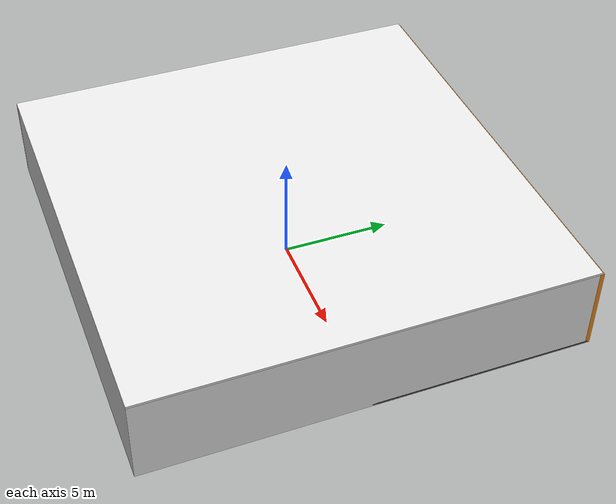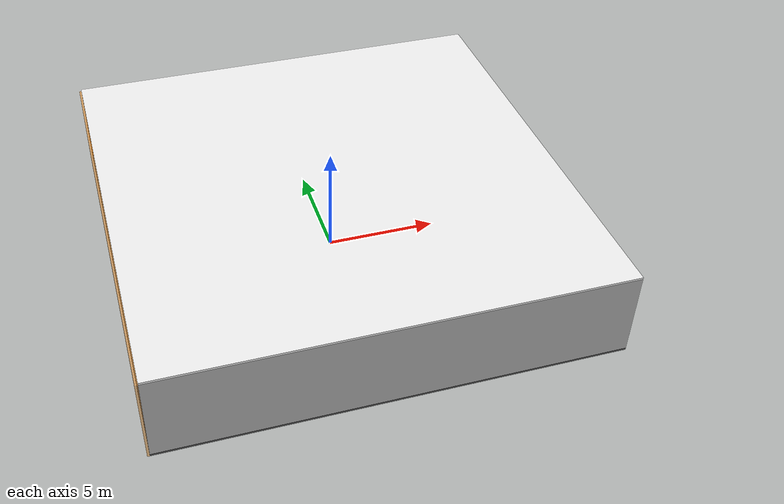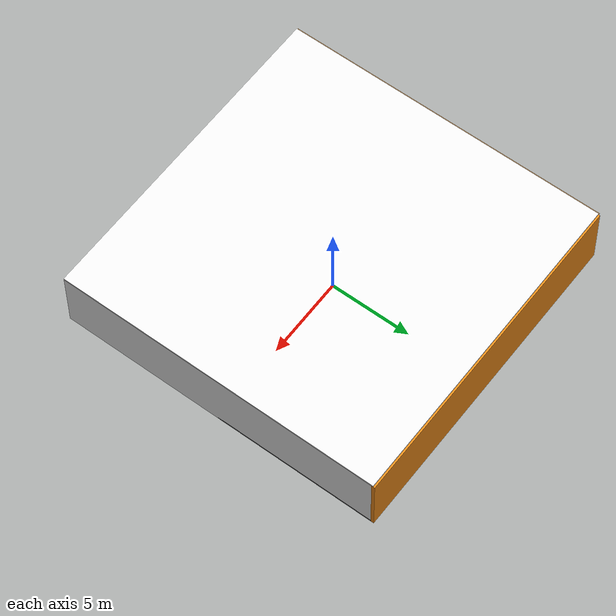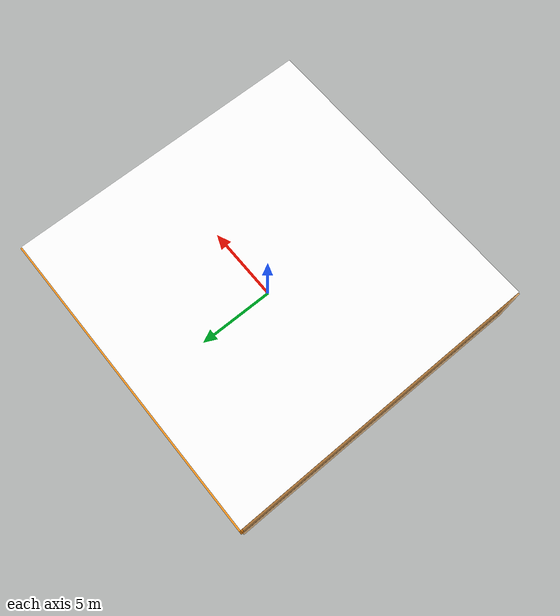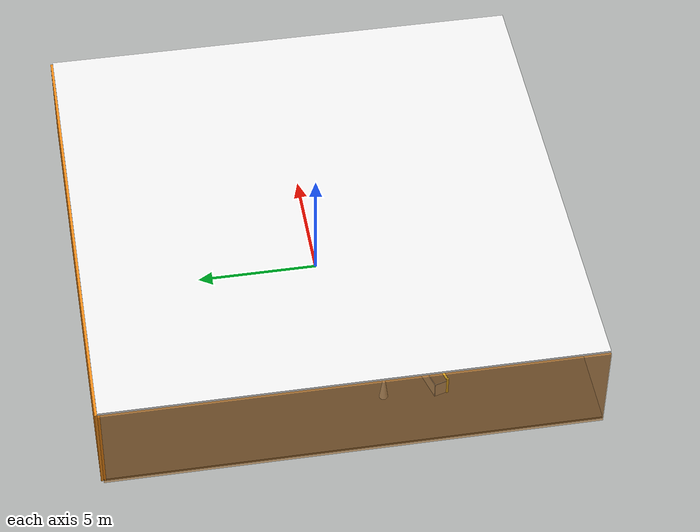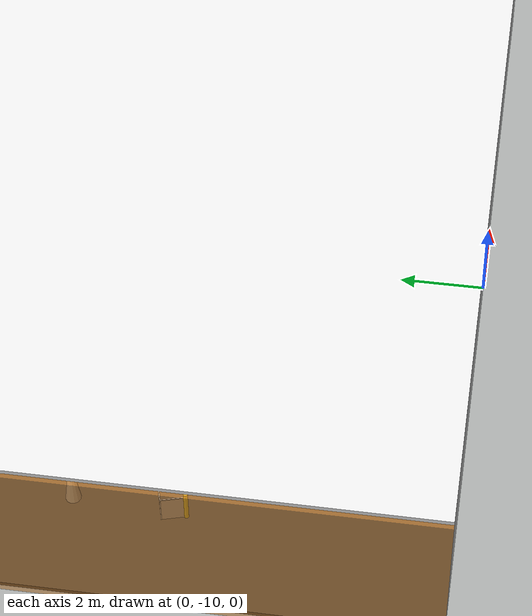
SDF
<sdf version="1.4">
 <world name="default">
  <physics type="ode">
   <max_step_size>0.001</max_step_size>
   <real_time_factor>1</real_time_factor>
   <real_time_update_rate>1000</real_time_update_rate>
   <gravity>0 0 -9.8</gravity>
  </physics>
  <scene><ambient>0.4 0.4 0.4 1</ambient><background>0.7 0.7 0.7 1</background><shadows>1</shadows></scene>
  <model name="Surrounding">
   <static>1</static>
   <link name="Ceiling">
    <collision name="Ceiling_Collision"><geometry><box><size>20 20 0.1</size></box></geometry></collision>
    <visual name="Ceiling_Visual">
     <geometry><box><size>20 20 0.1</size></box></geometry>
     <material>
      <script><uri>file://media/materials/scripts/gazebo.material</uri><name>Gazebo/WhiteGlow</name></script>
     </material>
    </visual>
    <pose>0 0 4.05 0 0 0</pose>
   </link>
   <link name="Wall_South">
    <collision name="Wall_South_Collision">
     <geometry><box><size>20 0 4</size></box></geometry>
     <pose>0 0 2 0 -0 0</pose>
    </collision>
    <visual name="Wall_South_Visual">
     <pose>0 0 2 0 -0 0</pose>
     <geometry><box><size>20 0 4</size></box></geometry>
     <material>
      <script><uri>file://media/materials/scripts/gazebo.material</uri><name>Gazebo/CloudySky</name></script>
     </material>
    </visual>
    <velocity_decay><linear>0</linear><angular>0</angular></velocity_decay>
    <pose>0 -10 0 0 -0 0</pose>
   </link>
   <link name="Wall_East">
    <collision name="Wall_21_Collision">
     <geometry><box><size>20 0 4</size></box></geometry>
     <pose>0 0 2 0 -0 0</pose>
    </collision>
    <visual name="Wall_21_Visual">
     <pose>0 0 2 0 -0 0</pose>
     <geometry><box><size>20 0 4</size></box></geometry>
     <material>
      <script><uri>file://media/materials/scripts/gazebo.material</uri><name>Gazebo/WhiteGlow</name></script>
     </material>
    </visual>
    <velocity_decay><linear>0</linear><angular>0</angular></velocity_decay>
    <pose>10 0 0 0 -0 1.5708</pose>
   </link>
   <link name="Wall_North">
    <collision name="Wall_22_Collision">
     <geometry><box><size>20 0.2 4</size></box></geometry>
     <pose>0 0 2 0 -0 0</pose>
    </collision>
    <visual name="Wall_22_Visual">
     <pose>0 0 2 0 -0 0</pose>
     <geometry><box><size>20 0.2 4</size></box></geometry>
     <material>
      <script><uri>file://media/materials/scripts/gazebo.material</uri><name>Gazebo/Orange</name></script>
     </material>
    </visual>
    <velocity_decay><linear>0</linear><angular>0</angular></velocity_decay>
    <pose>0 10 0 0 -0 0</pose>
   </link>
   <link name="Wall_West">
    <collision name="Wall_23_Collision">
     <geometry><box><size>20 0.2 4</size></box></geometry>
     <pose>0 0 2 0 -0 0</pose>
    </collision>
    <visual name="Wall_23_Visual">
     <pose>0 0 2 0 -0 0</pose>
     <geometry><box><size>20 0.2 4</size></box></geometry>
     <material>
      <script>
       <uri>file://media/materials/scripts/gazebo.material</uri>
       <name>Gazebo/OrangeTransparent</name>
      </script>
     </material>
    </visual>
    <velocity_decay><linear>0</linear><angular>0</angular></velocity_decay>
    <pose>-10 0 0 0 0 -1.5708</pose>
   </link>
   <link name="Ground_link">
    <collision name="collision">
     <pose>0 0 .05 0 -0 0</pose>
     <geometry><box><size>20 20 0.1</size></box></geometry>
    </collision>
    <visual name="visual">
     <pose>0 0 .05 0 -0 0</pose>
     <geometry><box><size>20 20 0.1</size></box></geometry>
     <material>
      <script><uri>file://media/materials/scripts/gazebo.material</uri><name>Gazebo/DarkGrey</name></script>
     </material>
    </visual>
   </link>
   <static>1</static>
  </model>
  <spherical_coordinates>
   <surface_model>EARTH_WGS84</surface_model>
   <latitude_deg>0</latitude_deg>
   <longitude_deg>0</longitude_deg>
   <elevation>0</elevation>
   <heading_deg>0</heading_deg>
  </spherical_coordinates>
  <light name="lightball_0" type="diffuse">
   <diffuse>0.8 0.8 0.8 1</diffuse>
   <specular>0.2 0.2 0.2 1</specular>
   <attenuation>
    <range>100</range>
    <constant>0.7</constant>
    <linear>0.01</linear>
    <quadratic>0.001</quadratic>
   </attenuation>
   <direction>-0.5 0.1 -0.9</direction>
   <pose>-0.780683975117 -4.02823524718 1.79402211412 0 0 0</pose>
  </light>
  <light name="lightball_1" type="diffuse">
   <diffuse>0.8 0.8 0.8 1</diffuse>
   <specular>0.2 0.2 0.2 1</specular>
   <attenuation>
    <range>100</range>
    <constant>0.7</constant>
    <linear>0.01</linear>
    <quadratic>0.001</quadratic>
   </attenuation>
   <direction>-0.5 0.1 -0.9</direction>
   <pose>-5.98337894917 4.15746241615 1.47995364445 0 0 0</pose>
  </light>
  <light name="lightball_2" type="diffuse">
   <diffuse>0.8 0.8 0.8 1</diffuse>
   <specular>0.2 0.2 0.2 1</specular>
   <attenuation>
    <range>100</range>
    <constant>0.7</constant>
    <linear>0.01</linear>
    <quadratic>0.001</quadratic>
   </attenuation>
   <direction>-0.5 0.1 -0.9</direction>
   <pose>9.70387522162 7.66770993357 2.96419819453 0 0 0</pose>
  </light>
  <light name="lightball_3" type="diffuse">
   <diffuse>0.8 0.8 0.8 1</diffuse>
   <specular>0.2 0.2 0.2 1</specular>
   <attenuation>
    <range>100</range>
    <constant>0.7</constant>
    <linear>0.01</linear>
    <quadratic>0.001</quadratic>
   </attenuation>
   <direction>-0.5 0.1 -0.9</direction>
   <pose>3.96634409331 -9.64643077256 3.38836652931 0 0 0</pose>
  </light>
  <light name="lightball_4" type="diffuse">
   <diffuse>0.8 0.8 0.8 1</diffuse>
   <specular>0.2 0.2 0.2 1</specular>
   <attenuation>
    <range>100</range>
    <constant>0.7</constant>
    <linear>0.01</linear>
    <quadratic>0.001</quadratic>
   </attenuation>
   <direction>-0.5 0.1 -0.9</direction>
   <pose>-8.35856527278 8.79914252093 2.0027788614 0 0 0</pose>
  </light>
  <light name="lightball_5" type="diffuse">
   <diffuse>0.8 0.8 0.8 1</diffuse>
   <specular>0.2 0.2 0.2 1</specular>
   <attenuation>
    <range>100</range>
    <constant>0.7</constant>
    <linear>0.01</linear>
    <quadratic>0.001</quadratic>
   </attenuation>
   <direction>-0.5 0.1 -0.9</direction>
   <pose>5.96593211715 -8.51808198455 2.6196214269 0 0 0</pose>
  </light>
  <light name="lightball_6" type="diffuse">
   <diffuse>0.8 0.8 0.8 1</diffuse>
   <specular>0.2 0.2 0.2 1</specular>
   <attenuation>
    <range>100</range>
    <constant>0.7</constant>
    <linear>0.01</linear>
    <quadratic>0.001</quadratic>
   </attenuation>
   <direction>-0.5 0.1 -0.9</direction>
   <pose>-5.69392294083 -7.44066304885 2.14502302936 0 0 0</pose>
  </light>
  <light name="lightball_7" type="diffuse">
   <diffuse>0.8 0.8 0.8 1</diffuse>
   <specular>0.2 0.2 0.2 1</specular>
   <attenuation>
    <range>100</range>
    <constant>0.7</constant>
    <linear>0.01</linear>
    <quadratic>0.001</quadratic>
   </attenuation>
   <direction>-0.5 0.1 -0.9</direction>
   <pose>-7.55659293442 5.68809986928 1.54545275732 0 0 0</pose>
  </light>
  <light name="lightball_8" type="diffuse">
   <diffuse>0.8 0.8 0.8 1</diffuse>
   <specular>0.2 0.2 0.2 1</specular>
   <attenuation>
    <range>100</range>
    <constant>0.7</constant>
    <linear>0.01</linear>
    <quadratic>0.001</quadratic>
   </attenuation>
   <direction>-0.5 0.1 -0.9</direction>
   <pose>-2.38011436956 -8.0529019128 0.622439840152 0 0 0</pose>
  </light>
  <light name="lightball_9" type="diffuse">
   <diffuse>0.8 0.8 0.8 1</diffuse>
   <specular>0.2 0.2 0.2 1</specular>
   <attenuation>
    <range>100</range>
    <constant>0.7</constant>
    <linear>0.01</linear>
    <quadratic>0.001</quadratic>
   </attenuation>
   <direction>-0.5 0.1 -0.9</direction>
   <pose>-4.16705426282 -6.18729529384 3.69848885747 0 0 0</pose>
  </light>
  <include>
   <uri>model://robocup_3Dsim_goal</uri>
   <pose>-6.73351466753 -3.82558527843 0 0 0 1.84801923093</pose>
  </include>
  <include>
   <uri>model://construction_cone</uri>
   <pose>-7.57145557283 -1.54227016892 0 0 0 1.41919659362</pose>
  </include>
  <include><uri>model://cabinet</uri><pose>-4.06042192636 -6.51646777569 0 0 0 1.83247686243</pose></include>
  <include>
   <uri>model://robocup_3Dsim_goal</uri>
   <pose>-1.4252644368 -8.21311483751 0 0 0 3.13442798157</pose>
  </include>
  <include><uri>model://table</uri><pose>1.21380045774 -6.6767056255 0 0 0 0.272657108275</pose></include>
  <include><uri>model://cabinet</uri><pose>6.41655522903 6.52778097671 0 0 0 1.44114091976</pose></include>
 </world>
</sdf>

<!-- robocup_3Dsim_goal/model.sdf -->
<sdf version="1.5">
  <model name="robocup_3d_goal">
    <static>true</static>
    <link name="left_post">
      <pose>0 1.05 0.45 0 0 0</pose>
      <collision name="collision">
        <geometry>
          <cylinder>
            <radius>0.05</radius>
            <length>0.9</length>
          </cylinder>
        </geometry>
      </collision>
      <visual name="visual">
        <geometry>
          <cylinder>
            <radius>0.05</radius>
            <length>0.9</length>
          </cylinder>
        </geometry>
        <material>
          <script>
            <uri>file://media/materials/scripts/gazebo.material</uri>
            <name>Gazebo/ZincYellow</name>
          </script>
        </material>
      </visual>
    </link>
    <link name="left_support_horiz_lower">
      <pose>0.30 1.05 0.01 0 0 0</pose>
      <collision name="collision">
        <geometry>
          <box>
            <size>0.50 0.02 0.02</size>
          </box>
        </geometry>
      </collision>
      <visual name="visual">
        <geometry>
          <box>
            <size>0.50 0.02 0.02</size>
          </box>
        </geometry>
        <material>
          <script>
            <uri>file://media/materials/scripts/gazebo.material</uri>
            <name>Gazebo/White</name>
          </script>
        </material>
      </visual>
    </link>
    <link name="left_support_horiz_upper">
      <pose>0.30 1.05 0.79 0 0 0</pose>
      <collision name="collision">
        <geometry>
          <box>
            <size>0.50 0.02 0.02</size>
          </box>
        </geometry>
      </collision>
      <visual name="visual">
        <geometry>
          <box>
            <size>0.50 0.02 0.02</size>
          </box>
        </geometry>
        <material>
          <script>
            <uri>file://media/materials/scripts/gazebo.material</uri>
            <name>Gazebo/White</name>
          </script>
        </material>
      </visual>
    </link>
    <link name="left_support_vertical">
      <pose>0.56 1.05 0.4 0 1.5708 0</pose>
      <collision name="collision">
        <geometry>
          <box>
            <size>0.80 0.02 0.02</size>
          </box>
        </geometry>
      </collision>
      <visual name="visual">
        <geometry>
          <box>
            <size>0.80 0.02 0.02</size>
          </box>
        </geometry>
        <material>
          <script>
            <uri>file://media/materials/scripts/gazebo.material</uri>
            <name>Gazebo/White</name>
          </script>
        </material>
      </visual>
    </link>
    <link name="right_support_horiz_lower">
      <pose>0.30 -1.05 0.01 0 0 0</pose>
      <collision name="collision">
        <geometry>
          <box>
            <size>0.50 0.02 0.02</size>
          </box>
        </geometry>
      </collision>
      <visual name="visual">
        <geometry>
          <box>
            <size>0.50 0.02 0.02</size>
          </box>
        </geometry>
        <material>
          <script>
            <uri>file://media/materials/scripts/gazebo.material</uri>
            <name>Gazebo/White</name>
          </script>
        </material>
      </visual>
    </link>
    <link name="right_support_horiz_upper">
      <pose>0.30 -1.05 0.79 0 0 0</pose>
      <collision name="collision">
        <geometry>
          <box>
            <size>0.50 0.02 0.02</size>
          </box>
        </geometry>
      </collision>
      <visual name="visual">
        <geometry>
          <box>
            <size>0.50 0.02 0.02</size>
          </box>
        </geometry>
        <material>
          <script>
            <uri>file://media/materials/scripts/gazebo.material</uri>
            <name>Gazebo/White</name>
          </script>
        </material>
      </visual>
    </link>
    <link name="right_support_vertical">
      <pose>0.56 -1.05 0.4 0 1.5708 0</pose>
      <collision name="collision">
        <geometry>
          <box>
            <size>0.80 0.02 0.02</size>
          </box>
        </geometry>
      </collision>
      <visual name="visual">
        <geometry>
          <box>
            <size>0.80 0.02 0.02</size>
          </box>
        </geometry>
        <material>
          <script>
            <uri>file://media/materials/scripts/gazebo.material</uri>
            <name>Gazebo/White</name>
          </script>
        </material>
      </visual>
    </link>
    <link name="center_support_horiz_lower">
      <pose>0.56 0 0.01 0 1.5708 0</pose>
      <collision name="collision">
        <geometry>
          <box>
            <size>0.02 2.08 0.02</size>
          </box>
        </geometry>
      </collision>
      <visual name="visual">
        <geometry>
          <box>
            <size>0.02 2.08 0.02</size>
          </box>
        </geometry>
        <material>
          <script>
            <uri>file://media/materials/scripts/gazebo.material</uri>
            <name>Gazebo/White</name>
          </script>
        </material>
      </visual>
    </link>
    <link name="center_support_horiz_upper">
      <pose>0.56 0 0.79 0 1.5708 0</pose>
      <collision name="collision">
        <geometry>
          <box>
            <size>0.02 2.08 0.02</size>
          </box>
        </geometry>
      </collision>
      <visual name="visual">
        <geometry>
          <box>
            <size>0.02 2.08 0.02</size>
          </box>
        </geometry>
        <material>
          <script>
            <uri>file://media/materials/scripts/gazebo.material</uri>
            <name>Gazebo/White</name>
          </script>
        </material>
      </visual>
    </link>
    <link name="right_post">
      <pose>0 -1.05 0.45 0 0 0</pose>
      <collision name="collision">
        <geometry>
          <cylinder>
            <radius>0.05</radius>
            <length>0.9</length>
          </cylinder>
        </geometry>
      </collision>
      <visual name="visual">
        <geometry>
          <cylinder>
            <radius>0.05</radius>
            <length>0.9</length>
          </cylinder>
        </geometry>
        <material>
          <script>
            <uri>file://media/materials/scripts/gazebo.material</uri>
            <name>Gazebo/ZincYellow</name>
          </script>
        </material>
      </visual>
    </link>
    <link name="crossbar">
      <pose>0 0 0.85 1.57 1.57 0</pose>
      <collision name="collision">
        <geometry>
          <cylinder>
            <radius>0.05</radius>
            <length>2.0</length>
          </cylinder>
        </geometry>
      </collision>
      <visual name="visual">
        <geometry>
          <cylinder>
            <radius>0.05</radius>
            <length>2.0</length>
          </cylinder>
        </geometry>
        <material>
          <script>
            <uri>file://media/materials/scripts/gazebo.material</uri>
            <name>Gazebo/ZincYellow</name>
          </script>
        </material>
      </visual>
    </link>
    <link name="center_net">
      <pose>0.56 0 0.40 0 0 0</pose>
      <collision name="collision">
        <geometry>
          <box>
            <size>0.01 2.1 0.80</size>
          </box>
        </geometry>
      </collision>
      <visual name="visual">
        <geometry>
          <box>
            <size>0.01 2.1 0.80</size>
          </box>
        </geometry>
        <material>
          <script>
            <uri>model://../model_source/models/robocup09_spl_field/materials/scripts/</uri>
            <uri>model://../model_source/models/robocup09_spl_field/materials/textures/</uri>
            <name>RoboCup/Net</name>
          </script>
        </material>
      </visual>
    </link>
    <link name="left_net">
      <pose>0.30 1.05 0.40 0 0 0</pose>
      <collision name="collision">
        <geometry>
          <box>
            <size>0.50 0.01 0.76</size>
          </box>
        </geometry>
      </collision>
      <visual name="visual">
        <geometry>
          <box>
            <size>0.50 0.01 0.76</size>
          </box>
        </geometry>
        <material>
          <script>
            <uri>model://../model_source/models/robocup09_spl_field/materials/scripts/</uri>
            <uri>model://../model_source/models/robocup09_spl_field/materials/textures/</uri>
            <name>RoboCup/Net</name>
          </script>
        </material>
      </visual>
    </link>
    <link name="right_net">
      <pose>0.30 -1.05 0.40 0 0 0</pose>
      <collision name="collision">
        <geometry>
          <box>
            <size>0.50 0.01 0.76</size>
          </box>
        </geometry>
      </collision>
      <visual name="visual">
        <geometry>
          <box>
            <size>0.50 0.01 0.76</size>
          </box>
        </geometry>
        <material>
          <script>
            <uri>model://../model_source/models/robocup09_spl_field/materials/scripts/</uri>
            <uri>model://../model_source/models/robocup09_spl_field/materials/textures/</uri>
            <name>RoboCup/Net</name>
          </script>
        </material>
      </visual>
    </link>
  </model>
</sdf>

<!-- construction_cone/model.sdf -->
<sdf version="1.5">
  <model name="Construction Cone">
    <link name="link">
      <collision name="collision">
        <geometry>
          <mesh>
            <scale>10 10 10</scale>
            <uri>file://isr-testbed/construction_cone/meshes/construction_cone.dae</uri>
          </mesh>
        </geometry>
      </collision>
      <visual name="visual">
        <geometry>
          <mesh>
            <scale>10 10 10</scale>
            <uri>file://isr-testbed/construction_cone/meshes/construction_cone.dae</uri>
          </mesh>
        </geometry>
      </visual>
    </link>
  </model>
</sdf>

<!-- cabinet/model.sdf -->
<sdf version="1.5">
  <model name="cabinet">
    <static>true</static>
    <link name="cabinet_bottom_plate">
      <inertial>
        <pose>0 0 -1 0 0 0</pose>
        <inertia>
          <ixx>2.050000</ixx>
          <ixy>0</ixy>
          <ixz>0</ixz>
          <iyy>2.050000</iyy>
          <iyz>0</iyz>
          <izz>2.050000</izz>
        </inertia>
        <mass>25.000000</mass>
      </inertial>
      <collision name="cabinet_bottom_plate_geom">
        <pose>0 0 0.010000 0 0 0</pose>
        <geometry>
          <box>
            <size>0.450000 0.450000 0.020000</size>
          </box>
        </geometry>
      </collision>
      <visual name="cabinet_bottom_plate_geom_visual">
        <pose>0 0 0.010000 0 0 0</pose>
        <geometry>
          <box>
            <size>0.450000 0.450000 0.020000</size>
          </box>
        </geometry>
        <material>
          <script>
            <uri>model://media/materials/scripts/gazebo.material</uri>
            <name>Gazebo/Wood</name>
          </script>
        </material>
      </visual>
      <collision name="cabinet_bottom_plate_geom_cabinet_back_plate">
        <pose>0.235000 0 0.510000 0 0 0</pose>
        <geometry>
          <box>
            <size>0.020000 0.450000 1.020000</size>
          </box>
        </geometry>
      </collision>
      <visual name="cabinet_bottom_plate_geom_cabinet_back_plate_visual">
        <pose>0.235000 0 0.510000 0 0 0</pose>
        <geometry>
          <box>
            <size>0.020000 0.450000 1.020000</size>
          </box>
        </geometry>
        <material>
          <script>
            <uri>model://media/materials/scripts/gazebo.material</uri>
            <name>Gazebo/Wood</name>
          </script>
        </material>
      </visual>
      <collision name="cabinet_bottom_plate_geom_cabinet_left_plate">
        <pose>0 0.235000 0.510000 0 0 0</pose>
        <geometry>
          <box>
            <size>0.450000 0.020000 1.020000</size>
          </box>
        </geometry>
      </collision>
      <visual name="cabinet_bottom_plate_geom_cabinet_left_plate_visual">
        <pose>0 0.235000 0.510000 0 0 0</pose>
        <geometry>
          <box>
            <size>0.450000 0.020000 1.020000</size>
          </box>
        </geometry>
        <material>
          <script>
            <uri>model://media/materials/scripts/gazebo.material</uri>
            <name>Gazebo/Wood</name>
          </script>
        </material>
      </visual>
      <collision name="cabinet_bottom_plate_geom_cabinet_middle_plate">
        <pose>0 0 0.510000 0 0 0</pose>
        <geometry>
          <box>
            <size>0.450000 0.450000 0.020000</size>
          </box>
        </geometry>
      </collision>
      <visual name="cabinet_bottom_plate_geom_cabinet_middle_plate_visual">
        <pose>0 0 0.510000 0 0 0</pose>
        <geometry>
          <box>
            <size>0.450000 0.450000 0.020000</size>
          </box>
        </geometry>
        <material>
          <script>
            <uri>model://media/materials/scripts/gazebo.material</uri>
            <name>Gazebo/Wood</name>
          </script>
        </material>
      </visual>
      <collision name="cabinet_bottom_plate_geom_cabinet_right_plate">
        <pose>0 -0.235000 0.510000 0 0 0</pose>
        <geometry>
          <box>
            <size>0.450000 0.020000 1.020000</size>
          </box>
        </geometry>
      </collision>
      <visual name="cabinet_bottom_plate_geom_cabinet_right_plate_visual">
        <pose>0 -0.235000 0.510000 0 0 0</pose>
        <geometry>
          <box>
            <size>0.450000 0.020000 1.020000</size>
          </box>
        </geometry>
        <material>
          <script>
            <uri>model://media/materials/scripts/gazebo.material</uri>
            <name>Gazebo/Wood</name>
          </script>
        </material>
      </visual>
      <collision name="cabinet_bottom_plate_geom_cabinet_top_plate">
        <pose>0 0 1.010000 0 0 0</pose>
        <geometry>
          <box>
            <size>0.450000 0.450000 0.020000</size>
          </box>
        </geometry>
      </collision>
      <visual name="cabinet_bottom_plate_geom_cabinet_top_plate_visual">
        <pose>0 0 1.010000 0 0 0</pose>
        <geometry>
          <box>
            <size>0.450000 0.450000 0.020000</size>
          </box>
        </geometry>
        <material>
          <script>
            <uri>model://media/materials/scripts/gazebo.material</uri>
            <name>Gazebo/Wood</name>
          </script>
        </material>
      </visual>
    </link>
  </model>
</sdf>

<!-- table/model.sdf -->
<sdf version="1.5">
  <model name="table">
    <static>true</static>
    <link name="link">
      <collision name="surface">
        <pose>0 0 1.0 0 0 0</pose>
        <geometry>
          <box>
            <size>1.5 0.8 0.03</size>
          </box>
        </geometry>
        <surface>
          <friction>
            <ode>
              <mu>0.6</mu>
              <mu2>0.6</mu2>
            </ode>
          </friction>
        </surface>
      </collision>
      <visual name="visual1">
        <pose>0 0 1.0 0 0 0</pose>
        <geometry>
          <box>
            <size>1.5 0.8 0.03</size>
          </box>
        </geometry>
        <material>
          <script>
            <uri>model://media/materials/scripts/gazebo.material</uri>
            <name>Gazebo/Wood</name>
          </script>
        </material>
      </visual>
      <collision name="front_left_leg">
        <pose>0.68 0.38 0.5 0 0 0</pose>
        <geometry>
          <cylinder>
            <radius>0.02</radius>
            <length>1.0</length>
          </cylinder>
        </geometry>
      </collision>
      <visual name="front_left_leg">
        <pose>0.68 0.38 0.5 0 0 0</pose>
        <geometry>
          <cylinder>
            <radius>0.02</radius>
            <length>1.0</length>
          </cylinder>
        </geometry>
        <material>
          <script>
            <uri>model://media/materials/scripts/gazebo.material</uri>
            <name>Gazebo/Grey</name>
          </script>
        </material>
      </visual>
      <collision name="front_right_leg">
        <pose>0.68 -0.38 0.5 0 0 0</pose>
        <geometry>
          <cylinder>
            <radius>0.02</radius>
            <length>1.0</length>
          </cylinder>
        </geometry>
      </collision>
      <visual name="front_right_leg">
        <pose>0.68 -0.38 0.5 0 0 0</pose>
        <geometry>
          <cylinder>
            <radius>0.02</radius>
            <length>1.0</length>
          </cylinder>
        </geometry>
        <material>
          <script>
            <uri>model://media/materials/scripts/gazebo.material</uri>
            <name>Gazebo/Grey</name>
          </script>
        </material>
      </visual>
      <collision name="back_right_leg">
        <pose>-0.68 -0.38 0.5 0 0 0</pose>
        <geometry>
          <cylinder>
            <radius>0.02</radius>
            <length>1.0</length>
          </cylinder>
        </geometry>
      </collision>
      <visual name="back_right_leg">
        <pose>-0.68 -0.38 0.5 0 0 0</pose>
        <geometry>
          <cylinder>
            <radius>0.02</radius>
            <length>1.0</length>
          </cylinder>
        </geometry>
        <material>
          <script>
            <uri>model://media/materials/scripts/gazebo.material</uri>
            <name>Gazebo/Grey</name>
          </script>
        </material>
      </visual>
      <collision name="back_left_leg">
        <pose>-0.68 0.38 0.5 0 0 0</pose>
        <geometry>
          <cylinder>
            <radius>0.02</radius>
            <length>1.0</length>
          </cylinder>
        </geometry>
      </collision>
      <visual name="back_left_leg">
        <pose>-0.68 0.38 0.5 0 0 0</pose>
        <geometry>
          <cylinder>
            <radius>0.02</radius>
            <length>1.0</length>
          </cylinder>
        </geometry>
        <material>
          <script>
            <uri>model://media/materials/scripts/gazebo.material</uri>
            <name>Gazebo/Grey</name>
          </script>
        </material>
      </visual>
    </link>
  </model>
</sdf>
